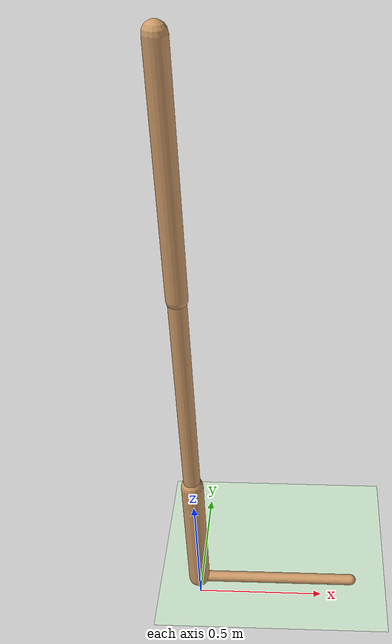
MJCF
<mujoco model="walker2d">
  <compiler angle="degree" inertiafromgeom="true" />
  <default>
    <joint armature="0.01" damping=".1" limited="true" />
    <geom conaffinity="0" condim="3" contype="1" density="1000" friction=".7 .1 .1" rgba="0.8 0.6 .4 1" />
  </default>
  <option integrator="RK4" timestep="0.002" />
  <worldbody>
    <light cutoff="100" diffuse="1 1 1" dir="-0 0 -1.3" directional="true" exponent="1" pos="0 0 1.3" specular=".1 .1 .1" />
    <geom conaffinity="1" condim="3" name="floor" pos="0 0 0" rgba="0.8 0.9 0.8 1" size="40 40 40" type="plane" material="MatPlane" />
    <body name="torso" pos="0 0 1.862192338705063">
      <camera name="track" mode="trackcom" pos="0 -5 -1.25" xyaxes="1 0 0 0 0 1" />
      <joint armature="0" axis="1 0 0" damping="0" limited="false" name="rootx" pos="0 0 -1.25" stiffness="0" type="slide" />
      <joint armature="0" axis="0 0 1" damping="0" limited="false" name="rootz" pos="0 0 -1.25" ref="1.25" stiffness="0" type="slide" />
      <joint armature="0" axis="0 1 0" damping="0" limited="false" name="rooty" pos="0 0 0" stiffness="0" type="hinge" />
      <geom friction="0.9" name="torso_geom" size="0.036384452134370804 0.40392234921455383" type="capsule" />
      <body name="thigh" pos="0 0 -0.40392234921455383">
        <joint axis="0 -1 0" name="thigh_joint" pos="0 0 0" range="-150 0" type="hinge" />
        <site name="torso_thigh_site" pos="0 0 0" size="0.01" type="sphere" rgba="1 0 0 0.5" />
        <geom friction="0.9" pos="0 0 -0.41862890124320984" name="thigh_geom" size="0.031521763652563095 0.41862890124320984" type="capsule" />
        <body name="leg" pos="0 0 -1.0977638959884644">
          <joint axis="0 -1 0" name="leg_joint" pos="0 0 0.2605060935020447" range="-150 0" type="hinge" />
          <site name="thigh_leg_site" pos="0 0 0.25" size="0.01" type="sphere" rgba="1 0 0 0.5" />
          <geom friction="0.9" name="leg_geom" size="0.041847843676805496 0.2605060935020447" type="capsule" />
          <body name="foot" pos="0.6181301474571228 0 -0.36050609350204466">
            <joint axis="0 -1 0" name="foot_joint" pos="-0.6181301474571228 0 0.1" range="-45 45" type="hinge" />
            <site name="leg_foot_site" pos="-0.2 0 0.1" size="0.01" type="sphere" rgba="1 0 0 0.5" />
            <geom friction="0.9" pos="-0.3090650737285614 0 0.1" quat="0.70710678118654757 0 -0.70710678118654746 0" name="foot_geom" size="0.021322432905435562 0.3090650737285614" type="capsule" />
          </body>
        </body>
      </body>

      <body name="thigh_left" pos="0 0 -0.40392234921455383">
        <joint axis="0 -1 0" name="thigh_left_joint" pos="0 0 0" range="-150 0" type="hinge" />
        <site name="torso_thigh_left_site" pos="0 0 0" size="0.01" type="sphere" rgba="1 0 0 0.5" />
        <geom friction="0.9" name="thigh_left_geom" rgba=".7 .3 .6 1" size="0.031521763652563095 0.41862890124320984" pos="0 0 -0.41862890124320984" type="capsule" />
        <body name="leg_left" pos="0 0 -1.0977638959884644">
          <joint axis="0 -1 0" name="leg_left_joint" pos="0 0 0.2605060935020447" range="-150 0" type="hinge" />
          <site name="thigh_leg_left_site" pos="0 0 0.25" size="0.01" type="sphere" rgba="1 0 0 0.5" />
          <geom friction="0.9" name="leg_left_geom" rgba=".7 .3 .6 1" size="0.041847843676805496 0.2605060935020447" type="capsule" />
          <body name="foot_left" pos="0.6181301474571228 0 -0.36050609350204466">
            <joint axis="0 -1 0" name="foot_left_joint" pos="-0.6181301474571228 0 0.1" range="-45 45" type="hinge" />
            <site name="leg_foot_left_site" pos="-0.2 0 0.1" size="0.01" type="sphere" rgba="1 0 0 0.5" />
            <geom friction="1.9" name="foot_left_geom" rgba=".7 .3 .6 1" size="0.021322432905435562 0.3090650737285614" pos="-0.3090650737285614 0 0.1" type="capsule" quat="0.70710678118654757 0 -0.70710678118654746 0" />
          </body>
        </body>
      </body>
    </body>
  </worldbody>
  <actuator>

    <motor ctrllimited="true" ctrlrange="-1.0 1.0" gear="73.94821544255214" joint="thigh_joint" />
    <motor ctrllimited="true" ctrlrange="-1.0 1.0" gear="114.05230437765053" joint="leg_joint" />
    <motor ctrllimited="true" ctrlrange="-1.0 1.0" gear="39.032012313037015" joint="foot_joint" />
    <motor ctrllimited="true" ctrlrange="-1.0 1.0" gear="73.94821544255214" joint="thigh_left_joint" />
    <motor ctrllimited="true" ctrlrange="-1.0 1.0" gear="114.05230437765053" joint="leg_left_joint" />
    <motor ctrllimited="true" ctrlrange="-1.0 1.0" gear="39.032012313037015" joint="foot_left_joint" />

  </actuator>
    <asset>
        <texture type="skybox" builtin="gradient" rgb1=".4 .5 .6" rgb2="0 0 0" width="100" height="100" />
        <texture builtin="flat" height="1278" mark="cross" markrgb="1 1 1" name="texgeom" random="0.01" rgb1="0.8 0.6 0.4" rgb2="0.8 0.6 0.4" type="cube" width="127" />
        <texture builtin="checker" height="100" name="texplane" rgb1="0 0 0" rgb2="0.8 0.8 0.8" type="2d" width="100" />
        <material name="MatPlane" reflectance="0.5" shininess="1" specular="1" texrepeat="60 60" texture="texplane" />
        <material name="geom" texture="texgeom" texuniform="true" />
    </asset>

  <sensor>
    <force site="torso_thigh_site" name="torso_thigh_sensor" />
    <force site="thigh_leg_site" name="thigh_leg_sensor" />
    <force site="leg_foot_site" name="leg_foot_sensor" />
    <force site="torso_thigh_left_site" name="torso_thigh_left_sensor" />
    <force site="thigh_leg_left_site" name="thigh_leg_left_sensor" />
    <force site="leg_foot_left_site" name="leg_foot_left_sensor" />
  </sensor>
</mujoco>
